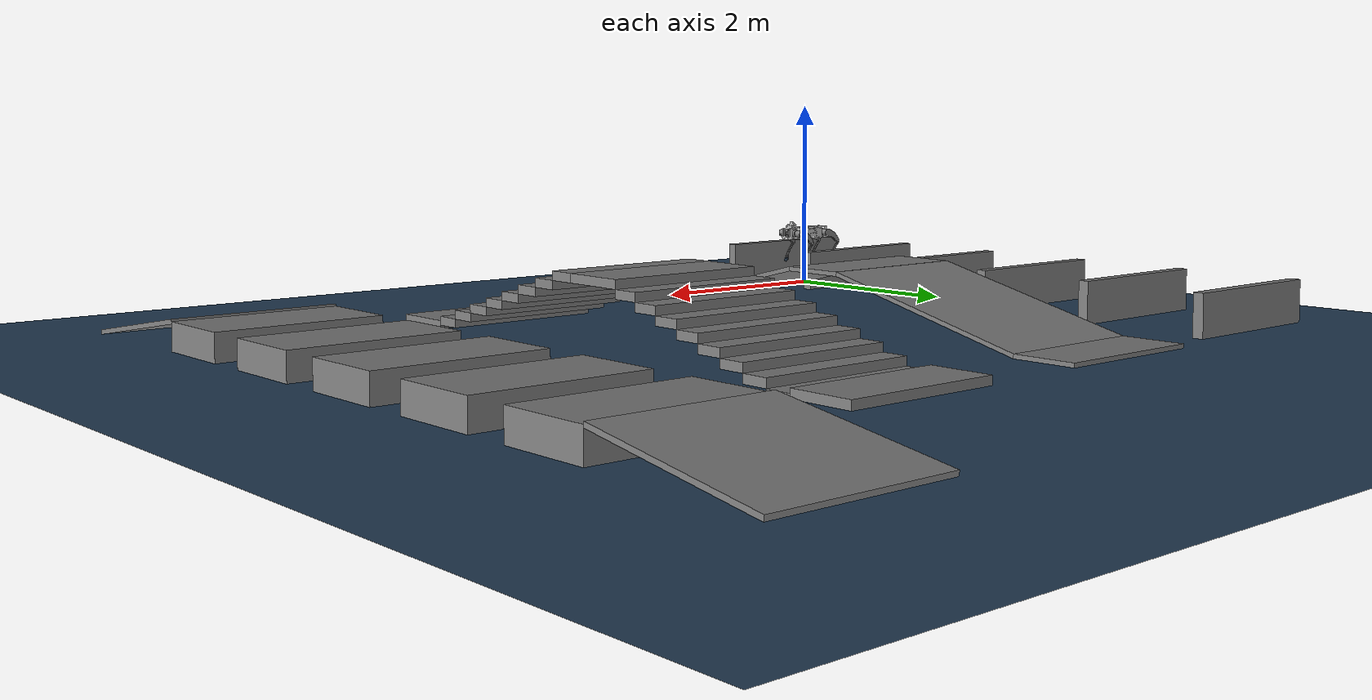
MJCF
<?xml version='1.0' encoding='utf-8'?>
<mujoco model="Legged_Robot_Parkour_with_Raycaster">
  <compiler angle="radian" autolimits="true" eulerseq="zyx"/>
  <option gravity='0 0 -9.81'>
    <flag frictionloss="enable"/>
  </option>
  <size njmax="500" nconmax="100" />

  <!-- Ray Caster插件扩展 -->
  <extension>
    <plugin plugin="mujoco.sensor.ray_caster_camera" />
  </extension>

  <statistic center="0 0 0.1" extent="8" />

  <visual>
    <headlight diffuse="0.6 0.6 0.6" ambient="0.3 0.3 0.3" specular="0 0 0" />
    <rgba haze="0.15 0.25 0.35 1" />
    <global azimuth="-130" elevation="-20" />
    <map znear="0.01" />
  </visual>

  <default>
    <joint limited='true'/>
    <motor ctrllimited='true'/>
    <geom condim='1' contype="1" conaffinity="0" friction='0.6 0.2 0.2'/>
    <default class='leg_joint_param'>
      <joint damping="0.5" frictionloss="0.01" armature="0.01"/>
    </default>
    <default class="foot_collision">
      <geom type="sphere" size="0.02" condim="6" friction="10.0 0.05 0.01"/>
    </default>
  </default>

  <asset>
    <!-- 场景资源 -->
    <texture type="skybox" builtin="gradient" rgb1="0.3 0.5 0.7" rgb2="0 0 0" width="512" height="3072" />
    <texture type="2d" name="groundplane" builtin="checker" mark="edge" rgb1="0.2 0.3 0.4" rgb2="0.1 0.2 0.3" markrgb="0.8 0.8 0.8" width="300" height="300" />
    <material name="groundplane" texture="groundplane" texuniform="true" texrepeat="5 5" reflectance="0.2" />

    <!-- 机器人mesh资源 -->
    <mesh name="base_link" file="/home/ares/Desktop/DOGV2.2.4.SLDASM/DOGV2.2.4.SLDASM/meshes/base_link.STL"/>
    <mesh name="LF_HipA_link" file="/home/ares/Desktop/DOGV2.2.4.SLDASM/DOGV2.2.4.SLDASM/meshes/LF_HipA_link.STL"/>
    <mesh name="LF_HipF_link" file="/home/ares/Desktop/DOGV2.2.4.SLDASM/DOGV2.2.4.SLDASM/meshes/LF_HipF_link.STL"/>
    <mesh name="LF_Knee_link" file="/home/ares/Desktop/DOGV2.2.4.SLDASM/DOGV2.2.4.SLDASM/meshes/LF_Knee_link.STL"/>
    <mesh name="LF_Foot_link" file="/home/ares/Desktop/DOGV2.2.4.SLDASM/DOGV2.2.4.SLDASM/meshes/LF_Foot_link.STL"/>
    <mesh name="LR_HipA_link" file="/home/ares/Desktop/DOGV2.2.4.SLDASM/DOGV2.2.4.SLDASM/meshes/LR_HipA_link.STL"/>
    <mesh name="LR_HipF_link" file="/home/ares/Desktop/DOGV2.2.4.SLDASM/DOGV2.2.4.SLDASM/meshes/LR_HipF_link.STL"/>
    <mesh name="LR_Knee_link" file="/home/ares/Desktop/DOGV2.2.4.SLDASM/DOGV2.2.4.SLDASM/meshes/LR_Knee_link.STL"/>
    <mesh name="LR_Foot_link" file="/home/ares/Desktop/DOGV2.2.4.SLDASM/DOGV2.2.4.SLDASM/meshes/LR_Foot_link.STL"/>
    <mesh name="RF_HipA_link" file="/home/ares/Desktop/DOGV2.2.4.SLDASM/DOGV2.2.4.SLDASM/meshes/RF_HipA_link.STL"/>
    <mesh name="RF_HipF_link" file="/home/ares/Desktop/DOGV2.2.4.SLDASM/DOGV2.2.4.SLDASM/meshes/RF_HipF_link.STL"/>
    <mesh name="RF_Knee_link" file="/home/ares/Desktop/DOGV2.2.4.SLDASM/DOGV2.2.4.SLDASM/meshes/RF_Knee_link.STL"/>
    <mesh name="RF_Foot_link" file="/home/ares/Desktop/DOGV2.2.4.SLDASM/DOGV2.2.4.SLDASM/meshes/RF_Foot_link.STL"/>
    <mesh name="RR_HipA_link" file="/home/ares/Desktop/DOGV2.2.4.SLDASM/DOGV2.2.4.SLDASM/meshes/RR_HipA_link.STL"/>
    <mesh name="RR_HipF_link" file="/home/ares/Desktop/DOGV2.2.4.SLDASM/DOGV2.2.4.SLDASM/meshes/RR_HipF_link.STL"/>
    <mesh name="RR_Knee_link" file="/home/ares/Desktop/DOGV2.2.4.SLDASM/DOGV2.2.4.SLDASM/meshes/RR_Knee_link.STL"/>
    <mesh name="RR_Foot_link" file="/home/ares/Desktop/DOGV2.2.4.SLDASM/DOGV2.2.4.SLDASM/meshes/RR_Foot_link.STL"/>

    <material name="matplane" reflectance="0.3" texture="texplane" texrepeat="1 1" texuniform="true"/>
    <texture name="texplane" type="2d" builtin="checker" rgb1=".2 .3 .4" rgb2=".1 0.15 0.2" width="512" height="512"/>
  </asset>

  <worldbody>
    <!-- 场景光照 -->
    <light pos="0 0 1.5" dir="0 0 -1" directional="true" />

    <!-- ========== 场景地形：从 auto_scene_terrain.xml 加载 ========== -->
    <!-- 地面：确保在geomgroup 0中，以便ray caster可以检测到 -->
    <geom name="floor" size="0 0 0.05" type="plane" material="groundplane" group="0" conaffinity="1" condim="3" friction="1.0 0.2 0.2" />

    <!-- 第一组障碍：垂直排列的台阶 -->
    <geom pos="0.0 -0.34999999999999964 0.25" type="box" size="0.8 0.05 0.2" quat="1.0 0.0 0.0 0.0" condim="3" friction="1.0 0.2 0.2" conaffinity="1"/>
    <geom pos="0.0 0.8500000000000003 0.25" type="box" size="0.8 0.05 0.2" quat="1.0 0.0 0.0 0.0" condim="3" friction="1.0 0.2 0.2" conaffinity="1"/>
    <geom pos="0.0 2.0500000000000003 0.25" type="box" size="0.8 0.05 0.2" quat="1.0 0.0 0.0 0.0" condim="3" friction="1.0 0.2 0.2" conaffinity="1"/>
    <geom pos="0.0 3.25 0.25" type="box" size="0.8 0.05 0.2" quat="1.0 0.0 0.0 0.0" condim="3" friction="1.0 0.2 0.2" conaffinity="1"/>
    <geom pos="0.0 4.45 0.25" type="box" size="0.8 0.05 0.2" quat="1.0 0.0 0.0 0.0" condim="3" friction="1.0 0.2 0.2" conaffinity="1"/>
    <geom pos="0.0 5.65 0.25" type="box" size="0.8 0.05 0.2" quat="1.0 0.0 0.0 0.0" condim="3" friction="1.0 0.2 0.2" conaffinity="1"/>

    <!-- 第二组障碍：斜坡 -->
    <geom pos="2.0 0.3 0.05" type="box" size="0.75 0.3 0.02" quat="1.0 0.0 0.0 0.0" condim="3" friction="1.0 0.2 0.2" conaffinity="1"/>
    <geom pos="2.0 1.6 0.3" type="box" size="0.75 1.0307764064044151 0.02" quat="0.992507556682903 0.12218326369570447 0.0 0.0" condim="3" friction="1.0 0.2 0.2" conaffinity="1"/>
    <geom pos="2.0 2.9 0.55" type="box" size="0.75 0.3 0.02" quat="1.0 0.0 0.0 0.0" condim="3" friction="1.0 0.2 0.2" conaffinity="1"/>
    <geom pos="2.0 4.2 0.3" type="box" size="0.75 1.0307764064044151 0.02" quat="0.992507556682903 -0.12218326369570447 0.0 0.0" condim="3" friction="1.0 0.2 0.2" conaffinity="1"/>
    <geom pos="2.0 5.5 0.05" type="box" size="0.75 0.3 0.02" quat="1.0 0.0 0.0 0.0" condim="3" friction="1.0 0.2 0.2" conaffinity="1"/>

    <!-- 第三组障碍：阶梯 -->
    <geom pos="4.5 0.3 0.05" type="box" size="0.75 0.3 0.04" quat="1.0 0.0 0.0 0.0" condim="3" friction="1.0 0.2 0.2" conaffinity="1"/>
    <geom pos="4.5 0.725 0.09" type="box" size="0.75 0.125 0.04" quat="1.0 0.0 0.0 0.0" condim="3" friction="1.0 0.2 0.2" conaffinity="1"/>
    <geom pos="4.5 0.975 0.16999999999999998" type="box" size="0.75 0.125 0.04" quat="1.0 0.0 0.0 0.0" condim="3" friction="1.0 0.2 0.2" conaffinity="1"/>
    <geom pos="4.5 1.225 0.25" type="box" size="0.75 0.125 0.04" quat="1.0 0.0 0.0 0.0" condim="3" friction="1.0 0.2 0.2" conaffinity="1"/>
    <geom pos="4.5 1.475 0.33" type="box" size="0.75 0.125 0.04" quat="1.0 0.0 0.0 0.0" condim="3" friction="1.0 0.2 0.2" conaffinity="1"/>
    <geom pos="4.5 1.725 0.41" type="box" size="0.75 0.125 0.04" quat="1.0 0.0 0.0 0.0" condim="3" friction="1.0 0.2 0.2" conaffinity="1"/>
    <geom pos="4.5 1.975 0.49" type="box" size="0.75 0.125 0.04" quat="1.0 0.0 0.0 0.0" condim="3" friction="1.0 0.2 0.2" conaffinity="1"/>
    <geom pos="4.5 2.225 0.5700000000000001" type="box" size="0.75 0.125 0.04" quat="1.0 0.0 0.0 0.0" condim="3" friction="1.0 0.2 0.2" conaffinity="1"/>
    <geom pos="4.5 2.475 0.65" type="box" size="0.75 0.125 0.04" quat="1.0 0.0 0.0 0.0" condim="3" friction="1.0 0.2 0.2" conaffinity="1"/>
    <geom pos="4.5 2.9 0.65" type="box" size="0.75 0.3 0.04" quat="1.0 0.0 0.0 0.0" condim="3" friction="1.0 0.2 0.2" conaffinity="1"/>
    <geom pos="4.5 3.325 0.5700000000000001" type="box" size="0.75 0.125 0.04" quat="1.0 0.0 0.0 0.0" condim="3" friction="1.0 0.2 0.2" conaffinity="1"/>
    <geom pos="4.5 3.575 0.49000000000000005" type="box" size="0.75 0.125 0.04" quat="1.0 0.0 0.0 0.0" condim="3" friction="1.0 0.2 0.2" conaffinity="1"/>
    <geom pos="4.5 3.825 0.41000000000000003" type="box" size="0.75 0.125 0.04" quat="1.0 0.0 0.0 0.0" condim="3" friction="1.0 0.2 0.2" conaffinity="1"/>
    <geom pos="4.5 4.075 0.33000000000000007" type="box" size="0.75 0.125 0.04" quat="1.0 0.0 0.0 0.0" condim="3" friction="1.0 0.2 0.2" conaffinity="1"/>
    <geom pos="4.5 4.325 0.25000000000000006" type="box" size="0.75 0.125 0.04" quat="1.0 0.0 0.0 0.0" condim="3" friction="1.0 0.2 0.2" conaffinity="1"/>
    <geom pos="4.5 4.575 0.17000000000000004" type="box" size="0.75 0.125 0.04" quat="1.0 0.0 0.0 0.0" condim="3" friction="1.0 0.2 0.2" conaffinity="1"/>
    <geom pos="4.5 4.825 0.09000000000000008" type="box" size="0.75 0.125 0.04" quat="1.0 0.0 0.0 0.0" condim="3" friction="1.0 0.2 0.2" conaffinity="1"/>
    <geom pos="4.5 5.075 0.010000000000000009" type="box" size="0.75 0.125 0.04" quat="1.0 0.0 0.0 0.0" condim="3" friction="1.0 0.2 0.2" conaffinity="1"/>
    <geom pos="4.5 5.5 0.05" type="box" size="0.75 0.3 0.04" quat="1.0 0.0 0.0 0.0" condim="3" friction="1.0 0.2 0.2" conaffinity="1"/>

    <!-- 第四组障碍：跳跃台 -->
    <geom pos="7.0 -0.25 0.175" type="box" size="0.75 0.7603453162872774 0.02" quat="0.9965926760297167 0.08248053154489327 0.0 0.0" condim="3" friction="1.0 0.2 0.2" conaffinity="1"/>
    <geom pos="7.0 0.9 0.175" type="box" size="0.75 0.4 0.125" quat="1.0 0.0 0.0 0.0" condim="3" friction="1.0 0.2 0.2" conaffinity="1"/>
    <geom pos="7.0 2.1 0.175" type="box" size="0.75 0.4 0.125" quat="1.0 0.0 0.0 0.0" condim="3" friction="1.0 0.2 0.2" conaffinity="1"/>
    <geom pos="7.0 3.3000000000000003 0.175" type="box" size="0.75 0.4 0.125" quat="1.0 0.0 0.0 0.0" condim="3" friction="1.0 0.2 0.2" conaffinity="1"/>
    <geom pos="7.0 4.500000000000001 0.175" type="box" size="0.75 0.4 0.125" quat="1.0 0.0 0.0 0.0" condim="3" friction="1.0 0.2 0.2" conaffinity="1"/>
    <geom pos="7.0 5.700000000000001 0.175" type="box" size="0.75 0.4 0.125" quat="1.0 0.0 0.0 0.0" condim="3" friction="1.0 0.2 0.2" conaffinity="1"/>
    <geom pos="7.0 6.8500000000000005 0.175" type="box" size="0.75 0.7603453162872774 0.02" quat="0.9965926760297167 -0.08248053154489327 0.0 0.0" condim="3" friction="1.0 0.2 0.2" conaffinity="1"/>

    <!-- ========== 机器人：初始位置在场景起点 ========== -->
    <body name="base_link" pos="0 0 0.5">
      <freejoint name="floating_base"/>
      <inertial pos="0.003073 -0.000011 0.058211" mass="5.2764368" fullinertia="0.0328421 0.1037622 0.1165384 0.0000334 -0.0072546 0.0000334"/>

      <!-- IMU传感器站点 -->
      <site name='imu' size='0.01' pos='0 0 0'/>

      <!-- 机器人视觉几何体 -->
      <geom type="mesh" mesh="base_link" rgba="0.75 0.75 0.75 1" contype="0" conaffinity="0" group="1"/>

      <!-- ========== Ray Caster Camera: 参考leggedrobot_with_terrain.xml的位置 ========== -->
      <!-- 位置: base_link前方约0.315米，高度约0.023米 -->
      <!-- 旋转: 相机朝向前方，与机器人前进方向一致 -->
      <camera name="ray_caster_camera" pos="0.31505 0.00 0.023"
              quat="0.0006 0.5736 0.0004 -0.8192"/>

      <!-- 左前腿 -->
      <body name="LF_HipA_link" pos="0.16 0.0675 0.063" quat="0.5 0.5 0.5 0.5">
        <inertial pos="0.002621 0.000052 0.046852" mass="0.452382" fullinertia="0.0005587 0.000347 0.000309 0.0000003 -0.0000007 -0.0000001"/>
        <joint name="LF_HipA_joint" axis="0 0 1" range="-0.7853982 0.7853982" class="leg_joint_param"/>
        <geom type="mesh" mesh="LF_HipA_link"/>

        <body name="LF_HipF_link" pos="0.018 0 0.048" quat="0.707 0 0.707 0">
          <inertial pos="0.033261 -0.016881 0.050217" mass="0.779164" fullinertia="0.0015974 0.0032684 0.0043304 0.0015051 -0.0004429 0.0002247"/>
          <joint name="LF_HipF_joint" axis="0 0 1" range="-1.2217658 0.8726683" class="leg_joint_param"/>
          <geom type="mesh" mesh="LF_HipF_link"/>

          <body name="LF_Knee_link" pos="0.1707 -0.1222 0.05">
            <inertial pos="-0.055107 -0.080197 0.016515" mass="0.121558" fullinertia="0.0005493 0.0002237 0.0007696 -0.0003334 -0.0000001 -0.0000002"/>
            <joint name="LF_Knee_joint" axis="0 0 1" range="-1.2217299 0.69813" class="leg_joint_param"/>
            <geom type="mesh" mesh="LF_Knee_link"/>
            <site name="LF_foot_site" pos="-0.11 -0.19 0.016" size="0.01"/>

            <geom name="LF_foot_visual" type="mesh" mesh="LF_Foot_link" pos="-0.11 -0.19 0.016" quat="0 0 0.707 0.707"
                  contype="0" conaffinity="0" group="1" material="matplane"/>
            <geom name="LF_foot_collision" class="foot_collision" pos="-0.11 -0.19 0.016" rgba="0 0 0 0"/>
          </body>
        </body>
      </body>

      <!-- 左后腿 -->
      <body name="LR_HipA_link" pos="-0.16 0.0675 0.063" quat="0.5 0.5 -0.5 -0.5">
        <inertial pos="-0.002621 -0.000052 0.046852" mass="0.452382" fullinertia="0.0005587 0.000347 0.000309 0.0000003 0.0000007 0.0000001"/>
        <joint name="LR_HipA_joint" axis="0 0 1" range="-0.7853982 0.7853982" class="leg_joint_param"/>
        <geom type="mesh" mesh="LR_HipA_link"/>

        <body name="LR_HipF_link" pos="-0.018 0 0.048" quat="0.707 0 -0.707 0">
          <inertial pos="0.03326 -0.016881 0.050217" mass="0.779164" fullinertia="0.0015974 0.0032684 0.0043304 0.0015051 -0.0004429 0.0002247"/>
          <joint name="LR_HipF_joint" axis="0 0 1" range="-1.2217305 0.8726683" class="leg_joint_param"/>
          <geom type="mesh" mesh="LR_HipF_link"/>

          <body name="LR_Knee_link" pos="0.1707 -0.1222 0.05">
            <inertial pos="-0.055107 -0.080197 0.016515" mass="0.121558" fullinertia="0.0005493 0.0002237 0.0007696 -0.0003334 -0.0000001 -0.0000002"/>
            <joint name="LR_Knee_joint" axis="0 0 1" range="-1.2217299 0.69813" class="leg_joint_param"/>
            <geom type="mesh" mesh="LR_Knee_link"/>
            <site name="LR_foot_site" pos="-0.11 -0.19 0.016" size="0.01"/>

            <geom name="LR_foot_visual" type="mesh" mesh="LR_Foot_link" pos="-0.11 -0.19 0.016" quat="0 0 -0.707 -0.707"
                  contype="0" conaffinity="0" group="1" material="matplane"/>
            <geom name="LR_foot_collision" class="foot_collision" pos="-0.11 -0.19 0.016" rgba="0 0 0 0"/>
          </body>
        </body>
      </body>

      <!-- 右前腿 -->
      <body name="RF_HipA_link" pos="0.16 -0.0675 0.063" quat="0.5 0.5 0.5 0.5">
        <inertial pos="-0.002621 -0.000052 0.046852" mass="0.452382" fullinertia="0.0005587 0.000347 0.000309 0.0000003 0.0000007 0.0000001"/>
        <joint name="RF_HipA_joint" axis="0 0 1" range="-0.7853982 0.7853982" class="leg_joint_param"/>
        <geom type="mesh" mesh="RF_HipA_link"/>

        <body name="RF_HipF_link" pos="-0.018 0 0.048" quat="0.707 0 -0.707 0">
          <inertial pos="-0.033247 -0.016939 0.050217" mass="0.779164" fullinertia="0.0015958 0.0032692 0.0043296 -0.0015036 0.0004432 0.0002236"/>
          <joint name="RF_HipF_joint" axis="0 0 1" range="-0.8726999 1.2217342" class="leg_joint_param"/>
          <geom type="mesh" mesh="RF_HipF_link"/>

          <body name="RF_Knee_link" pos="-0.1707 -0.1222 0.05">
            <inertial pos="0.055107 -0.080197 0.016485" mass="0.121558" fullinertia="0.0005493 0.0002237 0.0007696 0.0003334 -0.0000001 0.0000002"/>
            <joint name="RF_Knee_joint" axis="0 0 1" range="-0.6981312 1.2217287" class="leg_joint_param"/>
            <geom type="mesh" mesh="RF_Knee_link"/>
            <site name="RF_foot_site" pos="0.11 -0.19 0.016" size="0.01"/>

            <geom name="RF_foot_visual" type="mesh" mesh="RF_Foot_link" pos="0.11 -0.19 0.016" quat="0.707 -0.707 0 0"
                  contype="0" conaffinity="0" group="1" material="matplane"/>
            <geom name="RF_foot_collision" class="foot_collision" pos="0.11 -0.19 0.016" rgba="0 0 0 0"/>
          </body>
        </body>
      </body>

      <!-- 右后腿 -->
      <body name="RR_HipA_link" pos="-0.16 -0.0675 0.063" quat="0.5 0.5 -0.5 -0.5">
        <inertial pos="0.002621 0.000052 0.046852" mass="0.452382" fullinertia="0.0005587 0.000347 0.000309 0.0000003 -0.0000007 -0.0000001"/>
        <joint name="RR_HipA_joint" axis="0 0 1" range="-0.7853982 0.7853982" class="leg_joint_param"/>
        <geom type="mesh" mesh="RR_HipA_link"/>

        <body name="RR_HipF_link" pos="0.018 0 0.048" quat="0.707 0 0.707 0">
          <inertial pos="-0.033246 -0.01694 0.050217" mass="0.779164" fullinertia="0.0015958 0.0032692 0.0043296 -0.0015036 0.0004432 0.0002236"/>
          <joint name="RR_HipF_joint" axis="0 0 1" range="-0.8726999 1.2217305" class="leg_joint_param"/>
          <geom type="mesh" mesh="RR_HipF_link"/>

          <body name="RR_Knee_link" pos="-0.1707 -0.1222 0.05">
            <inertial pos="0.055107 -0.080197 0.016485" mass="0.121558" fullinertia="0.0005493 0.0002237 0.0007696 0.0003334 -0.0000001 0.0000002"/>
            <joint name="RR_Knee_joint" axis="0 0 1" range="-0.6981312 1.2217287" class="leg_joint_param"/>
            <geom type="mesh" mesh="RR_Knee_link"/>
            <site name="RR_foot_site" pos="0.11 -0.19 0.016" size="0.01"/>

            <geom name="RR_foot_visual" type="mesh" mesh="RR_Foot_link" pos="0.11 -0.19 0.016" quat="0.707 -0.707 0 0"
                  contype="0" conaffinity="0" group="1" material="matplane"/>
            <geom name="RR_foot_collision" class="foot_collision" pos="0.11 -0.19 0.016" rgba="0 0 0 0"/>
          </body>
        </body>
      </body>
    </body>
  </worldbody>

  <actuator>
    <motor name="LF_HipA" joint="LF_HipA_joint" gear="1" ctrllimited="true" ctrlrange="-17 17"/>
    <motor name="LF_HipF" joint="LF_HipF_joint" gear="1" ctrllimited="true" ctrlrange="-17 17"/>
    <motor name="LF_Knee" joint="LF_Knee_joint" gear="1" ctrllimited="true" ctrlrange="-25 25"/>

    <motor name="LR_HipA" joint="LR_HipA_joint" gear="1" ctrllimited="true" ctrlrange="-17 17"/>
    <motor name="LR_HipF" joint="LR_HipF_joint" gear="1" ctrllimited="true" ctrlrange="-17 17"/>
    <motor name="LR_Knee" joint="LR_Knee_joint" gear="1" ctrllimited="true" ctrlrange="-25 25"/>

    <motor name="RF_HipA" joint="RF_HipA_joint" gear="1" ctrllimited="true" ctrlrange="-17 17"/>
    <motor name="RF_HipF" joint="RF_HipF_joint" gear="1" ctrllimited="true" ctrlrange="-17 17"/>
    <motor name="RF_Knee" joint="RF_Knee_joint" gear="1" ctrllimited="true" ctrlrange="-25 25"/>

    <motor name="RR_HipA" joint="RR_HipA_joint" gear="1" ctrllimited="true" ctrlrange="-17 17"/>
    <motor name="RR_HipF" joint="RR_HipF_joint" gear="1" ctrllimited="true" ctrlrange="-17 17"/>
    <motor name="RR_Knee" joint="RR_Knee_joint" gear="1" ctrllimited="true" ctrlrange="-25 25"/>
  </actuator>

  <sensor>
    <!-- IMU传感器 -->
    <framequat name="orientation" objtype="site" objname="imu" noise="0.001"/>
    <framepos name="position" objtype="site" objname="imu" noise="0.001"/>
    <gyro name="angular-velocity" site="imu" noise="0.005"/>
    <velocimeter name="linear-velocity" site="imu" noise="0.001"/>
    <accelerometer name="linear-acceleration" site="imu" noise="0.005"/>

    <!-- 脚部触觉传感器 -->
    <touch name="LF_touch" site="LF_foot_site"/>
    <touch name="LR_touch" site="LR_foot_site"/>
    <touch name="RF_touch" site="RF_foot_site"/>
    <touch name="RR_touch" site="RR_foot_site"/>

    <!-- ========== Ray Caster Camera Sensor ========== -->
    <plugin name="ray_caster_camera" plugin="mujoco.sensor.ray_caster_camera"
            objtype="camera" objname="ray_caster_camera">
      <!-- 相机参数：对应Isaac Lab的PinholeCameraPatternCfg -->
      <config key="focal_length" value="11.041" />
      <config key="horizontal_aperture" value="20.955" />
      <config key="vertical_aperture" value="12.240" />
      <config key="size" value="106 60" />

      <!-- 测距范围：对应Isaac Lab的max_distance=2.0 -->
      <config key="dis_range" value="0.01 2.0" />

      <!-- 数据类型：深度数据（距离相机的距离） -->
      <config key="sensor_data_types" value="data_inf_zero" />

      <!-- ========== 噪声配置（可选） ========== -->
      <!-- 如需添加噪声，取消注释以下任一选项 -->

      <!-- 选项1: 均匀噪声 -->

      <!-- 选项2: 高斯噪声 -->

      <!-- 选项3: 噪声+随机置零 -->

      <!-- 选项4: 角度相关噪声 -->

      <!-- 检测设置：检测所有几何体组 -->
      <!-- geomgroup格式：6个值对应geomgroup 0-5，1=检测，0=不检测 -->
      <!-- 地面在geomgroup 0，所以第一个值必须为1 -->
      <config key="geomgroup" value="1 1 1 1 1 1" />

      <!-- 不检测传感器父body（避免检测到机器人自身） -->
      <config key="detect_parentbody" value="0" />

      <!-- ========== 可视化选项：在MuJoCo viewer中显示射线和命中点 ========== -->
      <!-- draw_deep_ray格式: 启用 间隔 组ID R G B 透明度 -->
      <!-- 参数说明:
           - 启用: 1=开启可视化, 0=关闭
           - 间隔: 每隔N条射线绘制一次（2=每隔2条绘制，1=全部绘制）
           - 组ID: MuJoCo渲染组（0-5）
           - R G B: 颜色值（0-1范围）
           - 透明度: 0=完全透明, 1=完全不透明
      -->
      <config key="draw_deep_ray" value="1 5 1 1 0.2 0.5 1" />

      <!-- draw_hip_point格式: 启用 半径 -->
      <!-- 参数说明:
           - 启用: 1=显示命中点, 0=不显示
           - 半径: 命中点球体的半径（米）
      -->
      <config key="draw_hip_point" value="1 0.01" />

      <!-- 性能选项（可选） -->
    </plugin>
  </sensor>
</mujoco>
